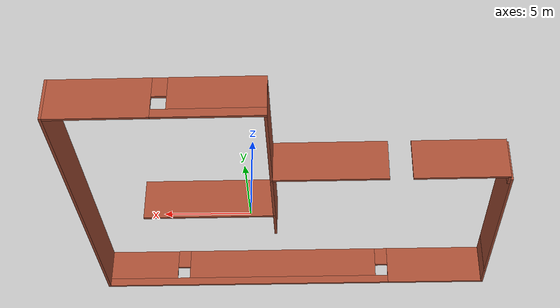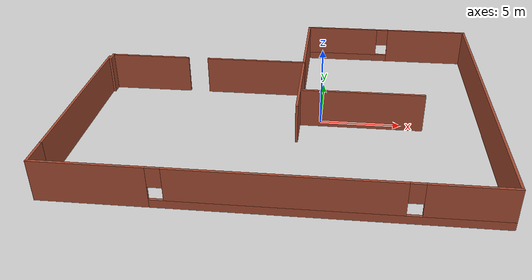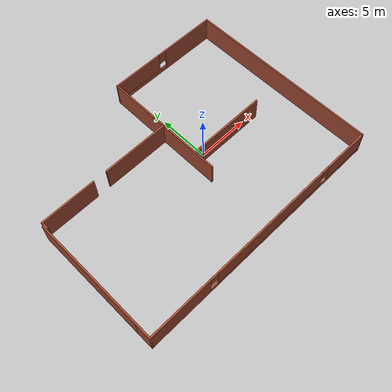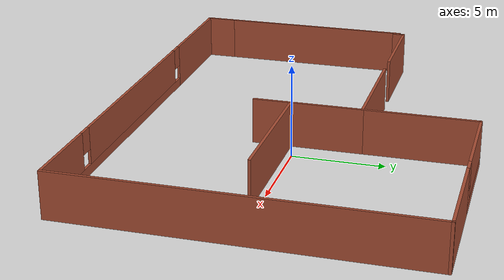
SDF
<?xml version='1.0'?>
<sdf version='1.6'>
  <model name='building3'>
    <pose frame=''>-2.3004 0.125478 0 0 -0 0</pose>
    <link name='Wall_10'>
      <pose frame=''>0 -9.425 0 0 -0 0</pose>
      <visual name='Wall_10_Visual_0'>
        <pose frame=''>-9.26102 0 1.25 0 -0 0</pose>
        <geometry>
          <box>
            <size>6.22795 0.15 2.5</size>
          </box>
        </geometry>
        <material>
          <script>
            <uri>file://media/materials/scripts/gazebo.material</uri>
            <name>Gazebo/Bricks</name>
          </script>
          <ambient>0.666667 0 0 1</ambient>
        </material>
        <meta>
          <layer>0</layer>
        </meta>
      </visual>
      <collision name='Wall_10_Collision_0'>
        <geometry>
          <box>
            <size>6.22795 0.15 2.5</size>
          </box>
        </geometry>
        <pose frame=''>-9.26102 0 1.25 0 -0 0</pose>
      </collision>
      <visual name='Wall_10_Visual_1'>
        <pose frame=''>3.11398 0 0.25 0 -0 0</pose>
        <geometry>
          <box>
            <size>18.522 0.15 0.5</size>
          </box>
        </geometry>
        <material>
          <script>
            <uri>file://media/materials/scripts/gazebo.material</uri>
            <name>Gazebo/Bricks</name>
          </script>
          <ambient>0.666667 0 0 1</ambient>
        </material>
        <meta>
          <layer>0</layer>
        </meta>
      </visual>
      <collision name='Wall_10_Collision_1'>
        <geometry>
          <box>
            <size>18.522 0.15 0.5</size>
          </box>
        </geometry>
        <pose frame=''>3.11398 0 0.25 0 -0 0</pose>
      </collision>
      <visual name='Wall_10_Visual_2'>
        <pose frame=''>0.823203 0 1.5 0 -0 0</pose>
        <geometry>
          <box>
            <size>12.3405 0.15 2</size>
          </box>
        </geometry>
        <material>
          <script>
            <uri>file://media/materials/scripts/gazebo.material</uri>
            <name>Gazebo/Bricks</name>
          </script>
          <ambient>0.666667 0 0 1</ambient>
        </material>
        <meta>
          <layer>0</layer>
        </meta>
      </visual>
      <collision name='Wall_10_Collision_2'>
        <geometry>
          <box>
            <size>12.3405 0.15 2</size>
          </box>
        </geometry>
        <pose frame=''>0.823203 0 1.5 0 -0 0</pose>
      </collision>
      <visual name='Wall_10_Visual_3'>
        <pose frame=''>10.0842 0 1.5 0 -0 0</pose>
        <geometry>
          <box>
            <size>4.58155 0.15 2</size>
          </box>
        </geometry>
        <material>
          <script>
            <uri>file://media/materials/scripts/gazebo.material</uri>
            <name>Gazebo/Bricks</name>
          </script>
          <ambient>0.666667 0 0 1</ambient>
        </material>
        <meta>
          <layer>0</layer>
        </meta>
      </visual>
      <collision name='Wall_10_Collision_3'>
        <geometry>
          <box>
            <size>4.58155 0.15 2</size>
          </box>
        </geometry>
        <pose frame=''>10.0842 0 1.5 0 -0 0</pose>
      </collision>
      <visual name='Wall_10_Visual_4'>
        <pose frame=''>-5.74705 0 1.9 0 -0 0</pose>
        <geometry>
          <box>
            <size>0.8 0.15 1.2</size>
          </box>
        </geometry>
        <material>
          <script>
            <uri>file://media/materials/scripts/gazebo.material</uri>
            <name>Gazebo/Bricks</name>
          </script>
          <ambient>0.666667 0 0 1</ambient>
        </material>
        <meta>
          <layer>0</layer>
        </meta>
      </visual>
      <collision name='Wall_10_Collision_4'>
        <geometry>
          <box>
            <size>0.8 0.15 1.2</size>
          </box>
        </geometry>
        <pose frame=''>-5.74705 0 1.9 0 -0 0</pose>
      </collision>
      <visual name='Wall_10_Visual_5'>
        <pose frame=''>7.39345 0 1.9 0 -0 0</pose>
        <geometry>
          <box>
            <size>0.8 0.15 1.2</size>
          </box>
        </geometry>
        <material>
          <script>
            <uri>file://media/materials/scripts/gazebo.material</uri>
            <name>Gazebo/Bricks</name>
          </script>
          <ambient>0.666667 0 0 1</ambient>
        </material>
        <meta>
          <layer>0</layer>
        </meta>
      </visual>
      <collision name='Wall_10_Collision_5'>
        <geometry>
          <box>
            <size>0.8 0.15 1.2</size>
          </box>
        </geometry>
        <pose frame=''>7.39345 0 1.9 0 -0 0</pose>
      </collision>
    </link>
    <link name='Wall_11'>
      <collision name='Wall_11_Collision'>
        <geometry>
          <box>
            <size>19 0.15 2.5</size>
          </box>
        </geometry>
        <pose frame=''>0 0 1.25 0 -0 0</pose>
      </collision>
      <visual name='Wall_11_Visual'>
        <pose frame=''>0 0 1.25 0 -0 0</pose>
        <geometry>
          <box>
            <size>19 0.15 2.5</size>
          </box>
        </geometry>
        <material>
          <script>
            <uri>file://media/materials/scripts/gazebo.material</uri>
            <name>Gazebo/Bricks</name>
          </script>
          <ambient>1 1 1 1</ambient>
        </material>
        <meta>
          <layer>0</layer>
        </meta>
      </visual>
      <pose frame=''>12.3 0 0 0 -0 1.5708</pose>
    </link>
    <link name='Wall_12'>
      <pose frame=''>6.625 9.425 0 0 -0 3.14159</pose>
      <visual name='Wall_12_Visual_0'>
        <pose frame=''>-2.95382 0 1.25 0 -0 0</pose>
        <geometry>
          <box>
            <size>5.59236 0.15 2.5</size>
          </box>
        </geometry>
        <material>
          <script>
            <uri>file://media/materials/scripts/gazebo.material</uri>
            <name>Gazebo/Bricks</name>
          </script>
          <ambient>1 0 0 1</ambient>
        </material>
        <meta>
          <layer>0</layer>
        </meta>
      </visual>
      <collision name='Wall_12_Collision_0'>
        <geometry>
          <box>
            <size>5.59236 0.15 2.5</size>
          </box>
        </geometry>
        <pose frame=''>-2.95382 0 1.25 0 -0 0</pose>
      </collision>
      <visual name='Wall_12_Visual_1'>
        <pose frame=''>2.79618 0 0.25 0 -0 0</pose>
        <geometry>
          <box>
            <size>5.90764 0.15 0.5</size>
          </box>
        </geometry>
        <material>
          <script>
            <uri>file://media/materials/scripts/gazebo.material</uri>
            <name>Gazebo/Bricks</name>
          </script>
          <ambient>1 0 0 1</ambient>
        </material>
        <meta>
          <layer>0</layer>
        </meta>
      </visual>
      <collision name='Wall_12_Collision_1'>
        <geometry>
          <box>
            <size>5.90764 0.15 0.5</size>
          </box>
        </geometry>
        <pose frame=''>2.79618 0 0.25 0 -0 0</pose>
      </collision>
      <visual name='Wall_12_Visual_2'>
        <pose frame=''>3.19618 0 1.5 0 -0 0</pose>
        <geometry>
          <box>
            <size>5.10764 0.15 2</size>
          </box>
        </geometry>
        <material>
          <script>
            <uri>file://media/materials/scripts/gazebo.material</uri>
            <name>Gazebo/Bricks</name>
          </script>
          <ambient>1 0 0 1</ambient>
        </material>
        <meta>
          <layer>0</layer>
        </meta>
      </visual>
      <collision name='Wall_12_Collision_2'>
        <geometry>
          <box>
            <size>5.10764 0.15 2</size>
          </box>
        </geometry>
        <pose frame=''>3.19618 0 1.5 0 -0 0</pose>
      </collision>
      <visual name='Wall_12_Visual_3'>
        <pose frame=''>0.242356 0 1.9 0 -0 0</pose>
        <geometry>
          <box>
            <size>0.8 0.15 1.2</size>
          </box>
        </geometry>
        <material>
          <script>
            <uri>file://media/materials/scripts/gazebo.material</uri>
            <name>Gazebo/Bricks</name>
          </script>
          <ambient>1 0 0 1</ambient>
        </material>
        <meta>
          <layer>0</layer>
        </meta>
      </visual>
      <collision name='Wall_12_Collision_3'>
        <geometry>
          <box>
            <size>0.8 0.15 1.2</size>
          </box>
        </geometry>
        <pose frame=''>0.242356 0 1.9 0 -0 0</pose>
      </collision>
    </link>
    <link name='Wall_13'>
      <collision name='Wall_13_Collision'>
        <geometry>
          <box>
            <size>6.25 0.15 2.5</size>
          </box>
        </geometry>
        <pose frame=''>0 0 1.25 0 -0 0</pose>
      </collision>
      <visual name='Wall_13_Visual'>
        <pose frame=''>0 0 1.25 0 -0 0</pose>
        <geometry>
          <box>
            <size>6.25 0.15 2.5</size>
          </box>
        </geometry>
        <material>
          <script>
            <uri>file://media/materials/scripts/gazebo.material</uri>
            <name>Gazebo/Bricks</name>
          </script>
          <ambient>1 1 1 1</ambient>
        </material>
        <meta>
          <layer>0</layer>
        </meta>
      </visual>
      <pose frame=''>0.95 6.375 0 0 0 -1.5708</pose>
    </link>
    <link name='Wall_14'>
      <pose frame=''>-5.6 3.325 0 0 -0 3.14159</pose>
      <visual name='Wall_14_Visual_0'>
        <pose frame=''>-3.32457 0 1.25 0 -0 0</pose>
        <geometry>
          <box>
            <size>6.60085 0.15 2.5</size>
          </box>
        </geometry>
        <material>
          <script>
            <uri>file://media/materials/scripts/gazebo.material</uri>
            <name>Gazebo/Bricks</name>
          </script>
          <ambient>1 0 0 1</ambient>
        </material>
        <meta>
          <layer>0</layer>
        </meta>
      </visual>
      <collision name='Wall_14_Collision_0'>
        <geometry>
          <box>
            <size>6.60085 0.15 2.5</size>
          </box>
        </geometry>
        <pose frame=''>-3.32457 0 1.25 0 -0 0</pose>
      </collision>
      <visual name='Wall_14_Visual_1'>
        <pose frame=''>3.95043 0 1.25 0 -0 0</pose>
        <geometry>
          <box>
            <size>5.34915 0.15 2.5</size>
          </box>
        </geometry>
        <material>
          <script>
            <uri>file://media/materials/scripts/gazebo.material</uri>
            <name>Gazebo/Bricks</name>
          </script>
          <ambient>1 0 0 1</ambient>
        </material>
        <meta>
          <layer>0</layer>
        </meta>
      </visual>
      <collision name='Wall_14_Collision_1'>
        <geometry>
          <box>
            <size>5.34915 0.15 2.5</size>
          </box>
        </geometry>
        <pose frame=''>3.95043 0 1.25 0 -0 0</pose>
      </collision>
    </link>
    <link name='Wall_15'>
      <collision name='Wall_15_Collision'>
        <geometry>
          <box>
            <size>0.75 0.15 2.5</size>
          </box>
        </geometry>
        <pose frame=''>0 0 1.25 0 -0 0</pose>
      </collision>
      <visual name='Wall_15_Visual'>
        <pose frame=''>0 0 1.25 0 -0 0</pose>
        <geometry>
          <box>
            <size>0.75 0.15 2.5</size>
          </box>
        </geometry>
        <material>
          <script>
            <uri>file://media/materials/scripts/gazebo.material</uri>
            <name>Gazebo/Bricks</name>
          </script>
          <ambient>1 1 1 1</ambient>
        </material>
        <meta>
          <layer>0</layer>
        </meta>
      </visual>
      <pose frame=''>-12.15 3.025 0 0 0 -1.5708</pose>
    </link>
    <link name='Wall_18'>
      <collision name='Wall_18_Collision'>
        <geometry>
          <box>
            <size>6 0.15 2.5</size>
          </box>
        </geometry>
        <pose frame=''>0 0 1.25 0 -0 0</pose>
      </collision>
      <visual name='Wall_18_Visual'>
        <pose frame=''>0 0 1.25 0 -0 0</pose>
        <geometry>
          <box>
            <size>6 0.15 2.5</size>
          </box>
        </geometry>
        <material>
          <script>
            <uri>file://media/materials/scripts/gazebo.material</uri>
            <name>Gazebo/Bricks</name>
          </script>
          <ambient>1 1 1 1</ambient>
        </material>
        <meta>
          <layer>0</layer>
        </meta>
      </visual>
      <pose frame=''>0.95 0.4 0 0 0 -1.5708</pose>
    </link>
    <link name='Wall_21'>
      <collision name='Wall_21_Collision'>
        <geometry>
          <box>
            <size>7.75 0.15 2.5</size>
          </box>
        </geometry>
        <pose frame=''>0 0 1.25 0 -0 0</pose>
      </collision>
      <visual name='Wall_21_Visual'>
        <pose frame=''>0 0 1.25 0 -0 0</pose>
        <geometry>
          <box>
            <size>7.75 0.15 2.5</size>
          </box>
        </geometry>
        <material>
          <script>
            <uri>file://media/materials/scripts/gazebo.material</uri>
            <name>Gazebo/Bricks</name>
          </script>
          <ambient>1 0 0 1</ambient>
        </material>
        <meta>
          <layer>0</layer>
        </meta>
      </visual>
      <pose frame=''>4.7562 -0.52955 0 0 -0 0</pose>
    </link>
    <link name='Wall_5'>
      <collision name='Wall_5_Collision'>
        <geometry>
          <box>
            <size>11 0.15 2.5</size>
          </box>
        </geometry>
        <pose frame=''>0 0 1.25 0 -0 0</pose>
      </collision>
      <visual name='Wall_5_Visual'>
        <pose frame=''>0 0 1.25 0 -0 0</pose>
        <geometry>
          <box>
            <size>11 0.15 2.5</size>
          </box>
        </geometry>
        <material>
          <script>
            <uri>file://media/materials/scripts/gazebo.material</uri>
            <name>Gazebo/Bricks</name>
          </script>
          <ambient>0.666667 0 0 1</ambient>
        </material>
        <meta>
          <layer>0</layer>
        </meta>
      </visual>
      <pose frame=''>-12.3 -2.4 0 0 0 -1.5708</pose>
    </link>
    <link name='Wall_9'>
      <collision name='Wall_9_Collision'>
        <geometry>
          <box>
            <size>1.75 0.15 2.5</size>
          </box>
        </geometry>
        <pose frame=''>0 0 1.25 0 -0 0</pose>
      </collision>
      <visual name='Wall_9_Visual'>
        <pose frame=''>0 0 1.25 0 -0 0</pose>
        <geometry>
          <box>
            <size>1.75 0.15 2.5</size>
          </box>
        </geometry>
        <material>
          <script>
            <uri>file://media/materials/scripts/gazebo.material</uri>
            <name>Gazebo/Bricks</name>
          </script>
          <ambient>0.666667 0 0 1</ambient>
        </material>
        <meta>
          <layer>0</layer>
        </meta>
      </visual>
      <pose frame=''>-12.3 -8.625 0 0 0 -1.5708</pose>
    </link>
    <static>1</static>
  </model>
</sdf>
